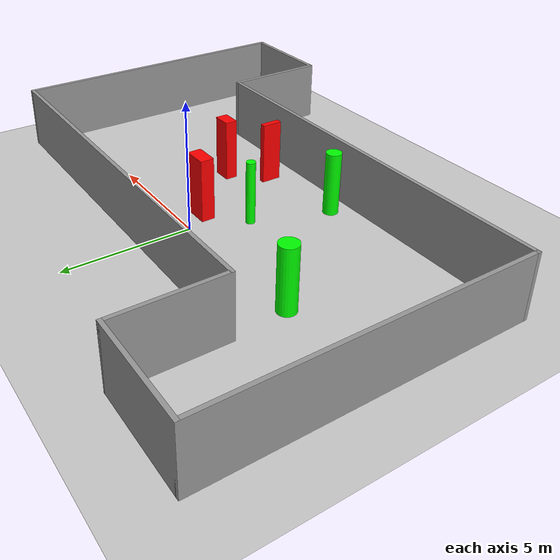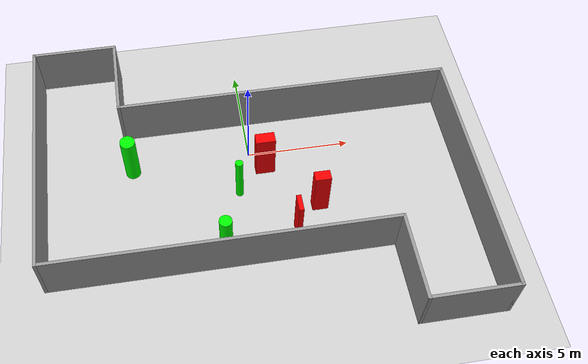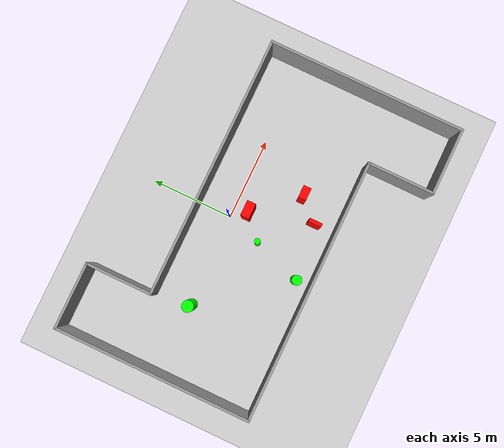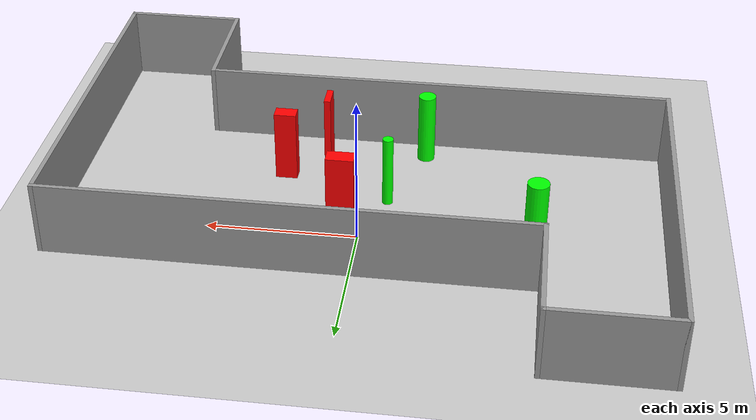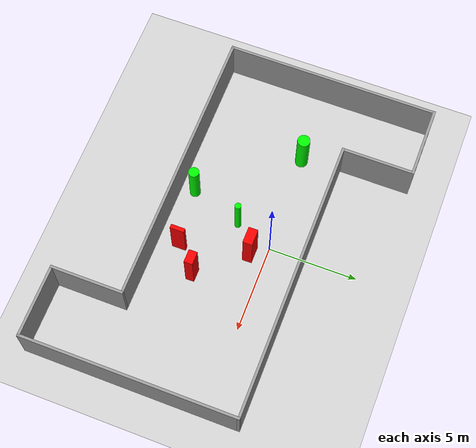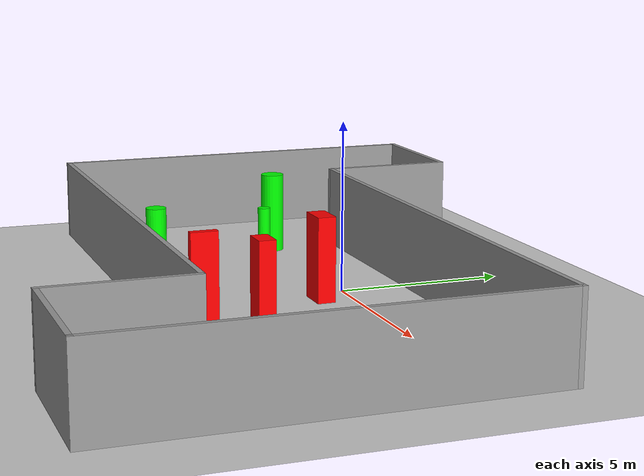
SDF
<sdf version="1.7">
 <world name="default">
  <light name="sun" type="directional">
   <pose>0 0 10 0 -0 0</pose>
   <diffuse>0.8 0.8 0.8 1</diffuse>
   <specular>0.2 0.2 0.2 1</specular>
   <attenuation>
    <range>1000</range>
    <constant>0.9</constant>
    <linear>0.01</linear>
    <quadratic>0.001</quadratic>
   </attenuation>
   <direction>-0.5 0.1 -0.9</direction>
   <spot><inner_angle>0</inner_angle><outer_angle>0</outer_angle><falloff>0</falloff></spot>
  </light>
  <model name="ground_plane">
   <static>1</static>
   <link name="link">
    <collision name="collision">
     <geometry><plane><normal>0 0 1</normal><size>100 100</size></plane></geometry>
     <surface>
      <contact><collide_bitmask>65535</collide_bitmask></contact>
      <friction><ode><mu>100</mu><mu2>50</mu2></ode></friction>
     </surface>
    </collision>
    <visual name="visual">
     <cast_shadows>0</cast_shadows>
     <geometry><plane><normal>0 0 1</normal><size>100 100</size></plane></geometry>
     <material>
      <script><uri>file://media/materials/scripts/gazebo.material</uri><name>Gazebo/Grey</name></script>
     </material>
    </visual>
   </link>
  </model>
  <gravity>0 0 -9.8</gravity>
  <magnetic_field>6e-06 2.3e-05 -4.2e-05</magnetic_field>
  <atmosphere type="adiabatic"/>
  <physics type="ode">
   <max_step_size>0.001</max_step_size>
   <real_time_factor>1</real_time_factor>
   <real_time_update_rate>1000</real_time_update_rate>
  </physics>
  <scene><ambient>0.4 0.4 0.4 1</ambient><background>0.7 0.7 0.7 1</background><shadows>1</shadows></scene>
  <spherical_coordinates>
   <surface_model>EARTH_WGS84</surface_model>
   <latitude_deg>0</latitude_deg>
   <longitude_deg>0</longitude_deg>
   <elevation>0</elevation>
   <heading_deg>0</heading_deg>
  </spherical_coordinates>
  <model name="my_base_walls">
   <link name="Wall_13">
    <collision name="Wall_13_Collision">
     <geometry><box><size>12.15 0.15 2.5</size></box></geometry>
     <pose>0 0 1.25 0 -0 0</pose>
    </collision>
    <visual name="Wall_13_Visual">
     <pose>0 0 1.25 0 -0 0</pose>
     <geometry><box><size>12.15 0.15 2.5</size></box></geometry>
     <material>
      <script><uri>file://media/materials/scripts/gazebo.material</uri><name>Gazebo/Grey</name></script>
      <ambient>1 1 1 1</ambient>
     </material>
     <meta><layer>0</layer></meta>
    </visual>
    <pose>10 -2 0 0 -0 1.5708</pose>
   </link>
   <link name="Wall_15">
    <collision name="Wall_15_Collision">
     <geometry><box><size>16.15 0.15 2.5</size></box></geometry>
     <pose>0 0 1.25 0 -0 0</pose>
    </collision>
    <visual name="Wall_15_Visual">
     <pose>0 0 1.25 0 -0 0</pose>
     <geometry><box><size>16.15 0.15 2.5</size></box></geometry>
     <material>
      <script><uri>file://media/materials/scripts/gazebo.material</uri><name>Gazebo/Grey</name></script>
      <ambient>1 1 1 1</ambient>
     </material>
     <meta><layer>0</layer></meta>
    </visual>
    <pose>2 4 0 0 -0 3.14159</pose>
   </link>
   <link name="Wall_17">
    <collision name="Wall_17_Collision">
     <geometry><box><size>4.15 0.15 2.5</size></box></geometry>
     <pose>0 0 1.25 0 -0 0</pose>
    </collision>
    <visual name="Wall_17_Visual">
     <pose>0 0 1.25 0 -0 0</pose>
     <geometry><box><size>4.15 0.15 2.5</size></box></geometry>
     <material>
      <script><uri>file://media/materials/scripts/gazebo.material</uri><name>Gazebo/Grey</name></script>
      <ambient>1 1 1 1</ambient>
     </material>
     <meta><layer>0</layer></meta>
    </visual>
    <pose>6 -6 0 0 -0 -1.5708</pose>
   </link>
   <link name="Wall_19">
    <collision name="Wall_19_Collision">
     <geometry><box><size>12.15 0.15 2.5</size></box></geometry>
     <pose>0 0 1.25 0 -0 0</pose>
    </collision>
    <visual name="Wall_19_Visual">
     <pose>0 0 1.25 0 -0 0</pose>
     <geometry><box><size>12.15 0.15 2.5</size></box></geometry>
     <material>
      <script><uri>file://media/materials/scripts/gazebo.material</uri><name>Gazebo/Grey</name></script>
      <ambient>1 1 1 1</ambient>
     </material>
     <meta><layer>0</layer></meta>
    </visual>
    <pose>-10 2 0 0 -0 1.5708</pose>
   </link>
   <link name="Wall_21">
    <collision name="Wall_21_Collision">
     <geometry><box><size>4.15 0.15 2.5</size></box></geometry>
     <pose>0 0 1.25 0 -0 0</pose>
    </collision>
    <visual name="Wall_21_Visual">
     <pose>0 0 1.25 0 -0 0</pose>
     <geometry><box><size>4.15 0.15 2.5</size></box></geometry>
     <material>
      <script><uri>file://media/materials/scripts/gazebo.material</uri><name>Gazebo/Grey</name></script>
      <ambient>1 1 1 1</ambient>
     </material>
     <meta><layer>0</layer></meta>
    </visual>
    <pose>-8 8 0 0 -0 0</pose>
   </link>
   <link name="Wall_23">
    <collision name="Wall_23_Collision">
     <geometry><box><size>4.15 0.15 2.5</size></box></geometry>
     <pose>0 0 1.25 0 -0 0</pose>
    </collision>
    <visual name="Wall_23_Visual">
     <pose>0 0 1.25 0 -0 0</pose>
     <geometry><box><size>4.15 0.15 2.5</size></box></geometry>
     <material>
      <script><uri>file://media/materials/scripts/gazebo.material</uri><name>Gazebo/Grey</name></script>
      <ambient>1 1 1 1</ambient>
     </material>
     <meta><layer>0</layer></meta>
    </visual>
    <pose>-6 6 0 0 -0 -1.5708</pose>
   </link>
   <link name="Wall_25">
    <collision name="Wall_25_Collision">
     <geometry><box><size>4.15 0.15 2.5</size></box></geometry>
     <pose>0 0 1.25 0 -0 0</pose>
    </collision>
    <visual name="Wall_25_Visual">
     <pose>0 0 1.25 0 -0 0</pose>
     <geometry><box><size>4.15 0.15 2.5</size></box></geometry>
     <material>
      <script><uri>file://media/materials/scripts/gazebo.material</uri><name>Gazebo/Grey</name></script>
      <ambient>1 1 1 1</ambient>
     </material>
     <meta><layer>0</layer></meta>
    </visual>
    <pose>8 -8 0 0 -0 0</pose>
   </link>
   <link name="Wall_9">
    <collision name="Wall_9_Collision">
     <geometry><box><size>16.15 0.15 2.5</size></box></geometry>
     <pose>0 0 1.25 0 -0 0</pose>
    </collision>
    <visual name="Wall_9_Visual">
     <pose>0 0 1.25 0 -0 0</pose>
     <geometry><box><size>16.15 0.15 2.5</size></box></geometry>
     <material>
      <script><uri>file://media/materials/scripts/gazebo.material</uri><name>Gazebo/Grey</name></script>
      <ambient>1 1 1 1</ambient>
     </material>
     <meta><layer>0</layer></meta>
    </visual>
    <pose>-2 -4 0 0 -0 3.14159</pose>
   </link>
   <static>1</static>
   <pose>-0 -2 0 0 -0 0</pose>
  </model>
  <model name="cylinder1">
   <static>1</static>
   <link name="link">
    <inertial>
     <mass>1</mass>
     <inertia><ixx>0.5</ixx><ixy>0</ixy><ixz>0</ixz><iyy>0.5</iyy><iyz>0</iyz><izz>1</izz></inertia>
    </inertial>
    <collision name="collision">
     <geometry><cylinder><radius>0.29661938966443757</radius><length>2.5</length></cylinder></geometry>
    </collision>
    <visual name="visual">
     <geometry><cylinder><radius>0.29661938966443757</radius><length>2.5</length></cylinder></geometry>
     <material>
      <ambient>0 1 0 1</ambient>
      <diffuse>0 1 0 1</diffuse>
      <specular>0.1 0.1 0.1 1</specular>
      <emissive>0 0 0 0</emissive>
     </material>
    </visual>
   </link>
   <pose>-1.7689740805706737 -5.111685417490408 1.25 0 0 0</pose>
  </model>
  <model name="cylinder2">
   <static>1</static>
   <link name="link">
    <inertial>
     <mass>1</mass>
     <inertia><ixx>0.5</ixx><ixy>0</ixy><ixz>0</ixz><iyy>0.5</iyy><iyz>0</iyz><izz>1</izz></inertia>
    </inertial>
    <collision name="collision">
     <geometry><cylinder><radius>0.35750972635220213</radius><length>2.5</length></cylinder></geometry>
    </collision>
    <visual name="visual">
     <geometry><cylinder><radius>0.35750972635220213</radius><length>2.5</length></cylinder></geometry>
     <material>
      <ambient>0 1 0 1</ambient>
      <diffuse>0 1 0 1</diffuse>
      <specular>0.1 0.1 0.1 1</specular>
      <emissive>0 0 0 0</emissive>
     </material>
    </visual>
   </link>
   <pose>-5.7221952652992165 -0.17987492179863462 1.25 0 0 0</pose>
  </model>
  <model name="cylinder3">
   <static>1</static>
   <link name="link">
    <inertial>
     <mass>1</mass>
     <inertia><ixx>0.5</ixx><ixy>0</ixy><ixz>0</ixz><iyy>0.5</iyy><iyz>0</iyz><izz>1</izz></inertia>
    </inertial>
    <collision name="collision">
     <geometry><cylinder><radius>0.17929143482478915</radius><length>2.5</length></cylinder></geometry>
    </collision>
    <visual name="visual">
     <geometry><cylinder><radius>0.17929143482478915</radius><length>2.5</length></cylinder></geometry>
     <material>
      <ambient>0 1 0 1</ambient>
      <diffuse>0 1 0 1</diffuse>
      <specular>0.1 0.1 0.1 1</specular>
      <emissive>0 0 0 0</emissive>
     </material>
    </visual>
   </link>
   <pose>-0.7429915484875282 -2.1533970593257834 1.25 0 0 0</pose>
  </model>
  <model name="box1">
   <static>1</static>
   <link name="link">
    <inertial>
     <mass>1</mass>
     <inertia><ixx>0.083</ixx><ixy>0</ixy><ixz>0</ixz><iyy>0.083</iyy><iyz>0</iyz><izz>0.083</izz></inertia>
    </inertial>
    <collision name="collision">
     <geometry><box><size>0.7442397308715074 0.48418688028557666 2.5</size></box></geometry>
    </collision>
    <visual name="visual">
     <geometry><box><size>0.7442397308715074 0.48418688028557666 2.5</size></box></geometry>
     <material>
      <ambient>1 0 0 1</ambient>
      <diffuse>1 0 0 1</diffuse>
      <specular>0.1 0.1 0.1 1</specular>
      <emissive>0 0 0 0</emissive>
     </material>
    </visual>
    <sensor name="my_contact" type="contact">
     <contact><collision>box_collision</collision><topic>__default_topic__</topic></contact>
    </sensor>
   </link>
   <pose>2.9009617732761974 -3.4150739916844977 1.25 0 0 0</pose>
  </model>
  <model name="box2">
   <static>1</static>
   <link name="link">
    <inertial>
     <mass>1</mass>
     <inertia><ixx>0.083</ixx><ixy>0</ixy><ixz>0</ixz><iyy>0.083</iyy><iyz>0</iyz><izz>0.083</izz></inertia>
    </inertial>
    <collision name="collision">
     <geometry><box><size>0.2221424655690675 0.7974557760887939 2.5</size></box></geometry>
    </collision>
    <visual name="visual">
     <geometry><box><size>0.2221424655690675 0.7974557760887939 2.5</size></box></geometry>
     <material>
      <ambient>1 0 0 1</ambient>
      <diffuse>1 0 0 1</diffuse>
      <specular>0.1 0.1 0.1 1</specular>
      <emissive>0 0 0 0</emissive>
     </material>
    </visual>
    <sensor name="my_contact" type="contact">
     <contact><collision>box_collision</collision><topic>__default_topic__</topic></contact>
    </sensor>
   </link>
   <pose>1.6234628013561405 -4.681032209248423 1.25 0 0 0</pose>
  </model>
  <model name="box3">
   <static>1</static>
   <link name="link">
    <inertial>
     <mass>1</mass>
     <inertia><ixx>0.083</ixx><ixy>0</ixy><ixz>0</ixz><iyy>0.083</iyy><iyz>0</iyz><izz>0.083</izz></inertia>
    </inertial>
    <collision name="collision">
     <geometry><box><size>0.9312411679160886 0.5369612100087149 2.5</size></box></geometry>
    </collision>
    <visual name="visual">
     <geometry><box><size>0.9312411679160886 0.5369612100087149 2.5</size></box></geometry>
     <material>
      <ambient>1 0 0 1</ambient>
      <diffuse>1 0 0 1</diffuse>
      <specular>0.1 0.1 0.1 1</specular>
      <emissive>0 0 0 0</emissive>
     </material>
    </visual>
    <sensor name="my_contact" type="contact">
     <contact><collision>box_collision</collision><topic>__default_topic__</topic></contact>
    </sensor>
   </link>
   <pose>0.665919485436163 -0.9115566593904507 1.25 0 0 0</pose>
  </model>
 </world>
</sdf>
